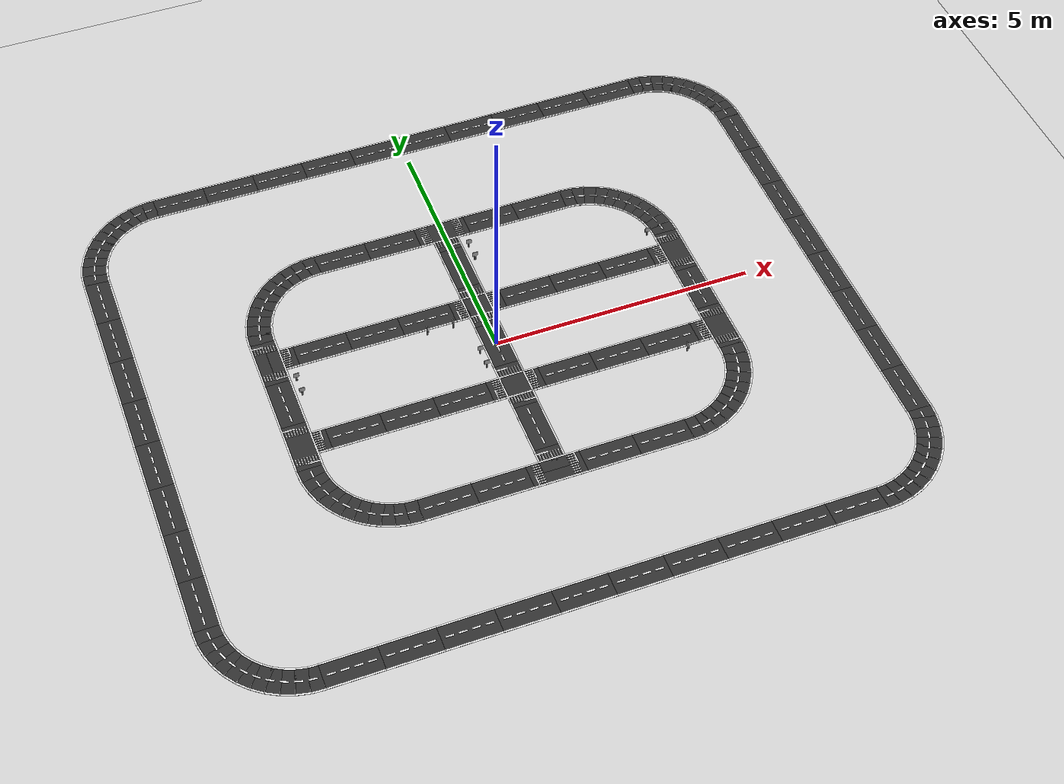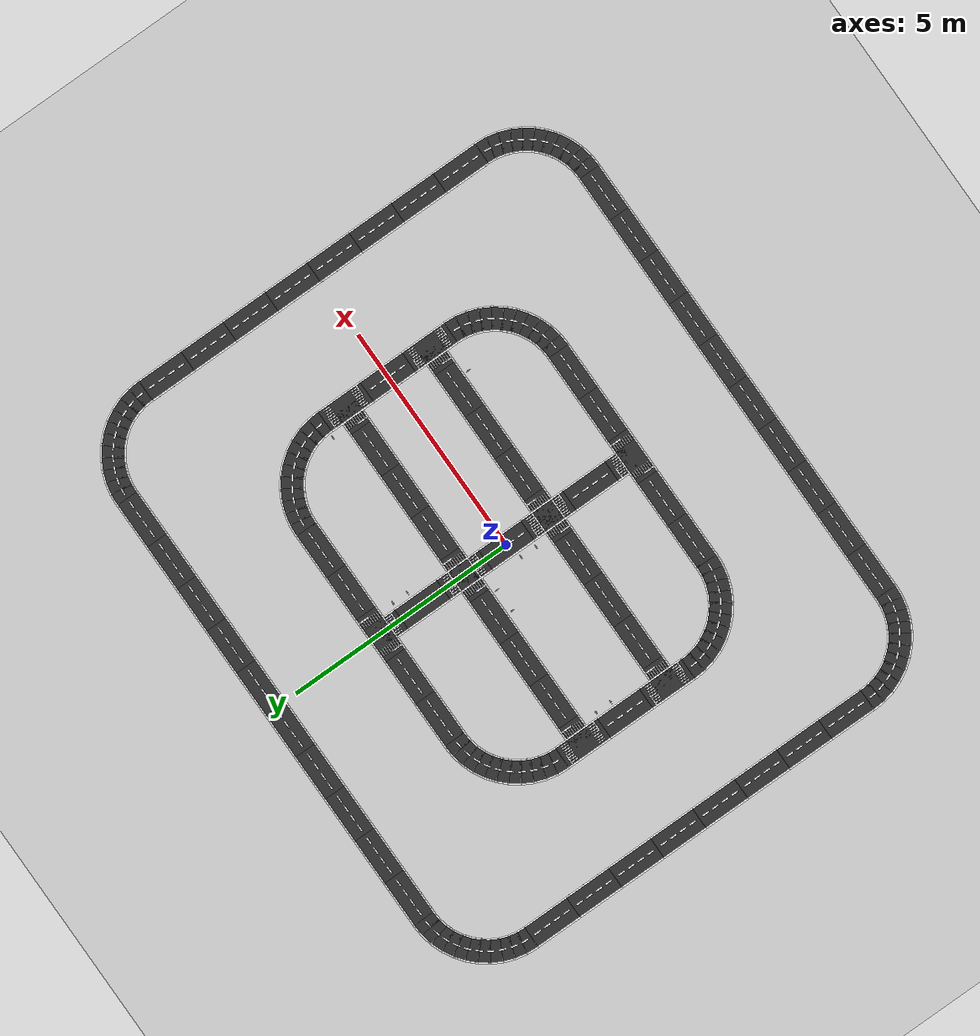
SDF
<?xml version="1.0"?>
<sdf version="1.6">
  <world name="track_world">

    <include><uri>model://ground_plane</uri></include>
    <include><uri>model://sun</uri></include>

    <physics type="ode">
      <real_time_update_rate>1000.0</real_time_update_rate>
      <max_step_size>0.001</max_step_size>
      <real_time_factor>1</real_time_factor>
      <ode>
        <solver>
          <type>quick</type><iters>150</iters><sor>1.3</sor>
          <use_dynamic_moi_rescaling>1</use_dynamic_moi_rescaling>
        </solver>
        <constraints>
          <cfm>0.00001</cfm><erp>0.2</erp>
          <contact_max_correcting_vel>2000.0</contact_max_correcting_vel>
          <contact_surface_layer>0.001</contact_surface_layer>
        </constraints>
      </ode>
    </physics>

    <gui fullscreen="0">
      <camera name="user_camera">
        <pose>1.0 0.0 22.0 0 1.55 0</pose>
        <view_controller>orbit</view_controller>
        <projection_type>perspective</projection_type>
      </camera>
    </gui>

    <include>
      <name>arc_tr</name>
      <uri>model://track_arc_90</uri>
      <pose>2.50000 1.50000 0.00000 0 0 0.00000</pose>
    </include>
    <include>
      <name>arc_tl</name>
      <uri>model://track_arc_90</uri>
      <pose>-2.50000 1.50000 0.00000 0 0 1.57080</pose>
    </include>
    <include>
      <name>arc_bl</name>
      <uri>model://track_arc_90</uri>
      <pose>-2.50000 -1.50000 0.00000 0 0 3.14159</pose>
    </include>
    <include>
      <name>arc_br</name>
      <uri>model://track_arc_90</uri>
      <pose>2.50000 -1.50000 0.00000 0 0 4.71239</pose>
    </include>
    <include>
      <name>top_t</name>
      <uri>model://track_t_intersection</uri>
      <pose>0.00000 3.00000 0.00000 0 0 4.71239</pose>
    </include>
    <include>
      <name>top_1</name>
      <uri>model://track_straight_1m</uri>
      <pose>-2.00000 3.00000 0.00000 0 0 0.00000</pose>
    </include>
    <include>
      <name>top_2</name>
      <uri>model://track_straight_1m</uri>
      <pose>-1.00000 3.00000 0.00000 0 0 0.00000</pose>
    </include>
    <include>
      <name>top_3</name>
      <uri>model://track_straight_1m</uri>
      <pose>1.00000 3.00000 0.00000 0 0 0.00000</pose>
    </include>
    <include>
      <name>top_4</name>
      <uri>model://track_straight_1m</uri>
      <pose>2.00000 3.00000 0.00000 0 0 0.00000</pose>
    </include>
    <include>
      <name>bot_t</name>
      <uri>model://track_t_intersection</uri>
      <pose>0.00000 -3.00000 0.00000 0 0 1.57080</pose>
    </include>
    <include>
      <name>bot_1</name>
      <uri>model://track_straight_1m</uri>
      <pose>-2.00000 -3.00000 0.00000 0 0 0.00000</pose>
    </include>
    <include>
      <name>bot_2</name>
      <uri>model://track_straight_1m</uri>
      <pose>-1.00000 -3.00000 0.00000 0 0 0.00000</pose>
    </include>
    <include>
      <name>bot_3</name>
      <uri>model://track_straight_1m</uri>
      <pose>1.00000 -3.00000 0.00000 0 0 0.00000</pose>
    </include>
    <include>
      <name>bot_4</name>
      <uri>model://track_straight_1m</uri>
      <pose>2.00000 -3.00000 0.00000 0 0 0.00000</pose>
    </include>
    <include>
      <name>left_t_n</name>
      <uri>model://track_t_intersection</uri>
      <pose>-4.00000 1.00000 0.00000 0 0 0.00000</pose>
    </include>
    <include>
      <name>left_mid</name>
      <uri>model://track_straight_1m</uri>
      <pose>-4.00000 0.00000 0.00000 0 0 1.57080</pose>
    </include>
    <include>
      <name>left_t_s</name>
      <uri>model://track_t_intersection</uri>
      <pose>-4.00000 -1.00000 0.00000 0 0 0.00000</pose>
    </include>
    <include>
      <name>right_t_n</name>
      <uri>model://track_t_intersection</uri>
      <pose>4.00000 1.00000 0.00000 0 0 3.14159</pose>
    </include>
    <include>
      <name>right_mid</name>
      <uri>model://track_straight_1m</uri>
      <pose>4.00000 0.00000 0.00000 0 0 1.57080</pose>
    </include>
    <include>
      <name>right_t_s</name>
      <uri>model://track_t_intersection</uri>
      <pose>4.00000 -1.00000 0.00000 0 0 3.14159</pose>
    </include>
    <include>
      <name>cross_n</name>
      <uri>model://track_cross_intersection</uri>
      <pose>0.00000 1.00000 0.00000 0 0 0.00000</pose>
    </include>
    <include>
      <name>cross_s</name>
      <uri>model://track_cross_intersection</uri>
      <pose>0.00000 -1.00000 0.00000 0 0 0.00000</pose>
    </include>
    <include>
      <name>uh_w1</name>
      <uri>model://track_straight_1m</uri>
      <pose>-3.00000 1.00000 0.00000 0 0 0.00000</pose>
    </include>
    <include>
      <name>uh_w2</name>
      <uri>model://track_straight_1m</uri>
      <pose>-2.00000 1.00000 0.00000 0 0 0.00000</pose>
    </include>
    <include>
      <name>uh_w3</name>
      <uri>model://track_straight_1m</uri>
      <pose>-1.00000 1.00000 0.00000 0 0 0.00000</pose>
    </include>
    <include>
      <name>uh_e1</name>
      <uri>model://track_straight_1m</uri>
      <pose>1.00000 1.00000 0.00000 0 0 0.00000</pose>
    </include>
    <include>
      <name>uh_e2</name>
      <uri>model://track_straight_1m</uri>
      <pose>2.00000 1.00000 0.00000 0 0 0.00000</pose>
    </include>
    <include>
      <name>uh_e3</name>
      <uri>model://track_straight_1m</uri>
      <pose>3.00000 1.00000 0.00000 0 0 0.00000</pose>
    </include>
    <include>
      <name>lh_w1</name>
      <uri>model://track_straight_1m</uri>
      <pose>-3.00000 -1.00000 0.00000 0 0 0.00000</pose>
    </include>
    <include>
      <name>lh_w2</name>
      <uri>model://track_straight_1m</uri>
      <pose>-2.00000 -1.00000 0.00000 0 0 0.00000</pose>
    </include>
    <include>
      <name>lh_w3</name>
      <uri>model://track_straight_1m</uri>
      <pose>-1.00000 -1.00000 0.00000 0 0 0.00000</pose>
    </include>
    <include>
      <name>lh_e1</name>
      <uri>model://track_straight_1m</uri>
      <pose>1.00000 -1.00000 0.00000 0 0 0.00000</pose>
    </include>
    <include>
      <name>lh_e2</name>
      <uri>model://track_straight_1m</uri>
      <pose>2.00000 -1.00000 0.00000 0 0 0.00000</pose>
    </include>
    <include>
      <name>lh_e3</name>
      <uri>model://track_straight_1m</uri>
      <pose>3.00000 -1.00000 0.00000 0 0 0.00000</pose>
    </include>
    <include>
      <name>iv_n</name>
      <uri>model://track_straight_1m</uri>
      <pose>0.00000 2.00000 0.00000 0 0 1.57080</pose>
    </include>
    <include>
      <name>iv_m</name>
      <uri>model://track_straight_1m</uri>
      <pose>0.00000 0.00000 0.00000 0 0 1.57080</pose>
    </include>
    <include>
      <name>iv_s</name>
      <uri>model://track_straight_1m</uri>
      <pose>0.00000 -2.00000 0.00000 0 0 1.57080</pose>
    </include>

    <include>
      <name>sr_arc_tr</name>
      <uri>model://track_arc_90</uri>
      <pose>5.00000 4.00000 0.00000 0 0 0.00000</pose>
    </include>
    <include>
      <name>sr_arc_tl</name>
      <uri>model://track_arc_90</uri>
      <pose>-5.00000 4.00000 0.00000 0 0 1.57080</pose>
    </include>
    <include>
      <name>sr_arc_bl</name>
      <uri>model://track_arc_90</uri>
      <pose>-5.00000 -4.00000 0.00000 0 0 3.14159</pose>
    </include>
    <include>
      <name>sr_arc_br</name>
      <uri>model://track_arc_90</uri>
      <pose>5.00000 -4.00000 0.00000 0 0 4.71239</pose>
    </include>
    <include>
      <name>sr_top_1</name>
      <uri>model://track_straight_1m</uri>
      <pose>-4.50000 5.50000 0.00000 0 0 0.00000</pose>
    </include>
    <include>
      <name>sr_top_2</name>
      <uri>model://track_straight_1m</uri>
      <pose>-3.50000 5.50000 0.00000 0 0 0.00000</pose>
    </include>
    <include>
      <name>sr_top_3</name>
      <uri>model://track_straight_1m</uri>
      <pose>-2.50000 5.50000 0.00000 0 0 0.00000</pose>
    </include>
    <include>
      <name>sr_top_4</name>
      <uri>model://track_straight_1m</uri>
      <pose>-1.50000 5.50000 0.00000 0 0 0.00000</pose>
    </include>
    <include>
      <name>sr_top_5</name>
      <uri>model://track_straight_1m</uri>
      <pose>-0.50000 5.50000 0.00000 0 0 0.00000</pose>
    </include>
    <include>
      <name>sr_top_6</name>
      <uri>model://track_straight_1m</uri>
      <pose>0.50000 5.50000 0.00000 0 0 0.00000</pose>
    </include>
    <include>
      <name>sr_top_7</name>
      <uri>model://track_straight_1m</uri>
      <pose>1.50000 5.50000 0.00000 0 0 0.00000</pose>
    </include>
    <include>
      <name>sr_top_8</name>
      <uri>model://track_straight_1m</uri>
      <pose>2.50000 5.50000 0.00000 0 0 0.00000</pose>
    </include>
    <include>
      <name>sr_top_9</name>
      <uri>model://track_straight_1m</uri>
      <pose>3.50000 5.50000 0.00000 0 0 0.00000</pose>
    </include>
    <include>
      <name>sr_top_10</name>
      <uri>model://track_straight_1m</uri>
      <pose>4.50000 5.50000 0.00000 0 0 0.00000</pose>
    </include>
    <include>
      <name>sr_bot_1</name>
      <uri>model://track_straight_1m</uri>
      <pose>-4.50000 -5.50000 0.00000 0 0 0.00000</pose>
    </include>
    <include>
      <name>sr_bot_2</name>
      <uri>model://track_straight_1m</uri>
      <pose>-3.50000 -5.50000 0.00000 0 0 0.00000</pose>
    </include>
    <include>
      <name>sr_bot_3</name>
      <uri>model://track_straight_1m</uri>
      <pose>-2.50000 -5.50000 0.00000 0 0 0.00000</pose>
    </include>
    <include>
      <name>sr_bot_4</name>
      <uri>model://track_straight_1m</uri>
      <pose>-1.50000 -5.50000 0.00000 0 0 0.00000</pose>
    </include>
    <include>
      <name>sr_bot_5</name>
      <uri>model://track_straight_1m</uri>
      <pose>-0.50000 -5.50000 0.00000 0 0 0.00000</pose>
    </include>
    <include>
      <name>sr_bot_6</name>
      <uri>model://track_straight_1m</uri>
      <pose>0.50000 -5.50000 0.00000 0 0 0.00000</pose>
    </include>
    <include>
      <name>sr_bot_7</name>
      <uri>model://track_straight_1m</uri>
      <pose>1.50000 -5.50000 0.00000 0 0 0.00000</pose>
    </include>
    <include>
      <name>sr_bot_8</name>
      <uri>model://track_straight_1m</uri>
      <pose>2.50000 -5.50000 0.00000 0 0 0.00000</pose>
    </include>
    <include>
      <name>sr_bot_9</name>
      <uri>model://track_straight_1m</uri>
      <pose>3.50000 -5.50000 0.00000 0 0 0.00000</pose>
    </include>
    <include>
      <name>sr_bot_10</name>
      <uri>model://track_straight_1m</uri>
      <pose>4.50000 -5.50000 0.00000 0 0 0.00000</pose>
    </include>
    <include>
      <name>sr_left_1</name>
      <uri>model://track_straight_1m</uri>
      <pose>-6.50000 -3.50000 0.00000 0 0 1.57080</pose>
    </include>
    <include>
      <name>sr_left_2</name>
      <uri>model://track_straight_1m</uri>
      <pose>-6.50000 -2.50000 0.00000 0 0 1.57080</pose>
    </include>
    <include>
      <name>sr_left_3</name>
      <uri>model://track_straight_1m</uri>
      <pose>-6.50000 -1.50000 0.00000 0 0 1.57080</pose>
    </include>
    <include>
      <name>sr_left_4</name>
      <uri>model://track_straight_1m</uri>
      <pose>-6.50000 -0.50000 0.00000 0 0 1.57080</pose>
    </include>
    <include>
      <name>sr_left_5</name>
      <uri>model://track_straight_1m</uri>
      <pose>-6.50000 0.50000 0.00000 0 0 1.57080</pose>
    </include>
    <include>
      <name>sr_left_6</name>
      <uri>model://track_straight_1m</uri>
      <pose>-6.50000 1.50000 0.00000 0 0 1.57080</pose>
    </include>
    <include>
      <name>sr_left_7</name>
      <uri>model://track_straight_1m</uri>
      <pose>-6.50000 2.50000 0.00000 0 0 1.57080</pose>
    </include>
    <include>
      <name>sr_left_8</name>
      <uri>model://track_straight_1m</uri>
      <pose>-6.50000 3.50000 0.00000 0 0 1.57080</pose>
    </include>
    <include>
      <name>sr_right_1</name>
      <uri>model://track_straight_1m</uri>
      <pose>6.50000 -3.50000 0.00000 0 0 1.57080</pose>
    </include>
    <include>
      <name>sr_right_2</name>
      <uri>model://track_straight_1m</uri>
      <pose>6.50000 -2.50000 0.00000 0 0 1.57080</pose>
    </include>
    <include>
      <name>sr_right_3</name>
      <uri>model://track_straight_1m</uri>
      <pose>6.50000 -1.50000 0.00000 0 0 1.57080</pose>
    </include>
    <include>
      <name>sr_right_4</name>
      <uri>model://track_straight_1m</uri>
      <pose>6.50000 -0.50000 0.00000 0 0 1.57080</pose>
    </include>
    <include>
      <name>sr_right_5</name>
      <uri>model://track_straight_1m</uri>
      <pose>6.50000 0.50000 0.00000 0 0 1.57080</pose>
    </include>
    <include>
      <name>sr_right_6</name>
      <uri>model://track_straight_1m</uri>
      <pose>6.50000 1.50000 0.00000 0 0 1.57080</pose>
    </include>
    <include>
      <name>sr_right_7</name>
      <uri>model://track_straight_1m</uri>
      <pose>6.50000 2.50000 0.00000 0 0 1.57080</pose>
    </include>
    <include>
      <name>sr_right_8</name>
      <uri>model://track_straight_1m</uri>
      <pose>6.50000 3.50000 0.00000 0 0 1.57080</pose>
    </include>

    <include>
      <name>sign_right_1</name>
      <uri>model://sign_right</uri>
      <pose>-3.65000 0.10000 0.00000 0 0 3.14159</pose>
    </include>
    <include>
      <name>sign_stop_1</name>
      <uri>model://sign_stop</uri>
      <pose>-3.65000 0.45000 0.00000 0 0 3.14159</pose>
    </include>
    <include>
      <name>sign_left_1</name>
      <uri>model://sign_left</uri>
      <pose>-1.10000 0.65000 0.00000 0 0 1.57080</pose>
    </include>
    <include>
      <name>sign_stop_2</name>
      <uri>model://sign_stop</uri>
      <pose>-0.60000 0.65000 0.00000 0 0 1.57080</pose>
    </include>
    <include>
      <name>sign_left_2</name>
      <uri>model://sign_left</uri>
      <pose>0.35000 2.10000 0.00000 0 0 3.14159</pose>
    </include>
    <include>
      <name>sign_stop_3</name>
      <uri>model://sign_stop</uri>
      <pose>0.35000 2.45000 0.00000 0 0 3.14159</pose>
    </include>
    <include>
      <name>sign_forward_1</name>
      <uri>model://sign_forward</uri>
      <pose>-0.35000 -0.10000 0.00000 0 0 0.00000</pose>
    </include>
    <include>
      <name>sign_stop_4</name>
      <uri>model://sign_stop</uri>
      <pose>-0.35000 -0.45000 0.00000 0 0 0.00000</pose>
    </include>
    <include>
      <name>sign_no_entry_1</name>
      <uri>model://sign_no_entry</uri>
      <pose>3.65000 1.55000 0.00000 0 0 0.00000</pose>
    </include>
    <include>
      <name>sign_dead_end_1</name>
      <uri>model://sign_dead_end</uri>
      <pose>3.20000 -1.35000 0.00000 0 0 1.57080</pose>
    </include>
  </world>
</sdf>

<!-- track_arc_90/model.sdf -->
<sdf version="1.6">
  <model name="track_arc_90">
    <static>true</static>
    <link name="link">
      <visual name="v001">
        <pose>1.49618 0.10701 0.00100 0 0 1.64220</pose>
        <geometry>
          <box>
            <size>0.23134 0.50000 0.00200</size>
          </box>
        </geometry>
        <material>
          <ambient>0.180 0.180 0.180 1</ambient>
          <diffuse>0.180 0.180 0.180 1</diffuse>
          <specular>0.05 0.05 0.05 1</specular>
        </material>
      </visual>
      <visual name="v002">
        <pose>1.46572 0.31885 0.00100 0 0 1.78500</pose>
        <geometry>
          <box>
            <size>0.23134 0.50000 0.00200</size>
          </box>
        </geometry>
        <material>
          <ambient>0.180 0.180 0.180 1</ambient>
          <diffuse>0.180 0.180 0.180 1</diffuse>
          <specular>0.05 0.05 0.05 1</specular>
        </material>
      </visual>
      <visual name="v003">
        <pose>1.40542 0.52420 0.00100 0 0 1.92780</pose>
        <geometry>
          <box>
            <size>0.23134 0.50000 0.00200</size>
          </box>
        </geometry>
        <material>
          <ambient>0.180 0.180 0.180 1</ambient>
          <diffuse>0.180 0.180 0.180 1</diffuse>
          <specular>0.05 0.05 0.05 1</specular>
        </material>
      </visual>
      <visual name="v004">
        <pose>1.31652 0.71887 0.00100 0 0 2.07060</pose>
        <geometry>
          <box>
            <size>0.23134 0.50000 0.00200</size>
          </box>
        </geometry>
        <material>
          <ambient>0.180 0.180 0.180 1</ambient>
          <diffuse>0.180 0.180 0.180 1</diffuse>
          <specular>0.05 0.05 0.05 1</specular>
        </material>
      </visual>
      <visual name="v005">
        <pose>1.20081 0.89892 0.00100 0 0 2.21339</pose>
        <geometry>
          <box>
            <size>0.23134 0.50000 0.00200</size>
          </box>
        </geometry>
        <material>
          <ambient>0.180 0.180 0.180 1</ambient>
          <diffuse>0.180 0.180 0.180 1</diffuse>
          <specular>0.05 0.05 0.05 1</specular>
        </material>
      </visual>
      <visual name="v006">
        <pose>1.06066 1.06066 0.00100 0 0 2.35619</pose>
        <geometry>
          <box>
            <size>0.23134 0.50000 0.00200</size>
          </box>
        </geometry>
        <material>
          <ambient>0.180 0.180 0.180 1</ambient>
          <diffuse>0.180 0.180 0.180 1</diffuse>
          <specular>0.05 0.05 0.05 1</specular>
        </material>
      </visual>
      <visual name="v007">
        <pose>0.89892 1.20081 0.00100 0 0 2.49899</pose>
        <geometry>
          <box>
            <size>0.23134 0.50000 0.00200</size>
          </box>
        </geometry>
        <material>
          <ambient>0.180 0.180 0.180 1</ambient>
          <diffuse>0.180 0.180 0.180 1</diffuse>
          <specular>0.05 0.05 0.05 1</specular>
        </material>
      </visual>
      <visual name="v008">
        <pose>0.71887 1.31652 0.00100 0 0 2.64179</pose>
        <geometry>
          <box>
            <size>0.23134 0.50000 0.00200</size>
          </box>
        </geometry>
        <material>
          <ambient>0.180 0.180 0.180 1</ambient>
          <diffuse>0.180 0.180 0.180 1</diffuse>
          <specular>0.05 0.05 0.05 1</specular>
        </material>
      </visual>
      <visual name="v009">
        <pose>0.52420 1.40542 0.00100 0 0 2.78459</pose>
        <geometry>
          <box>
            <size>0.23134 0.50000 0.00200</size>
          </box>
        </geometry>
        <material>
          <ambient>0.180 0.180 0.180 1</ambient>
          <diffuse>0.180 0.180 0.180 1</diffuse>
          <specular>0.05 0.05 0.05 1</specular>
        </material>
      </visual>
      <visual name="v010">
        <pose>0.31885 1.46572 0.00100 0 0 2.92739</pose>
        <geometry>
          <box>
            <size>0.23134 0.50000 0.00200</size>
          </box>
        </geometry>
        <material>
          <ambient>0.180 0.180 0.180 1</ambient>
          <diffuse>0.180 0.180 0.180 1</diffuse>
          <specular>0.05 0.05 0.05 1</specular>
        </material>
      </visual>
      <visual name="v011">
        <pose>0.10701 1.49618 0.00100 0 0 3.07019</pose>
        <geometry>
          <box>
            <size>0.23134 0.50000 0.00200</size>
          </box>
        </geometry>
        <material>
          <ambient>0.180 0.180 0.180 1</ambient>
          <diffuse>0.180 0.180 0.180 1</diffuse>
          <specular>0.05 0.05 0.05 1</specular>
        </material>
      </visual>
      <visual name="v012">
        <pose>1.73058 0.12377 0.00400 0 0 1.64220</pose>
        <geometry>
          <box>
            <size>0.26758 0.03000 0.00200</size>
          </box>
        </geometry>
        <material>
          <ambient>1.000 1.000 1.000 1</ambient>
          <diffuse>1.000 1.000 1.000 1</diffuse>
          <specular>0.05 0.05 0.05 1</specular>
        </material>
      </visual>
      <visual name="v013">
        <pose>1.69535 0.36880 0.00400 0 0 1.78500</pose>
        <geometry>
          <box>
            <size>0.26758 0.03000 0.00200</size>
          </box>
        </geometry>
        <material>
          <ambient>1.000 1.000 1.000 1</ambient>
          <diffuse>1.000 1.000 1.000 1</diffuse>
          <specular>0.05 0.05 0.05 1</specular>
        </material>
      </visual>
      <visual name="v014">
        <pose>1.62561 0.60632 0.00400 0 0 1.92780</pose>
        <geometry>
          <box>
            <size>0.26758 0.03000 0.00200</size>
          </box>
        </geometry>
        <material>
          <ambient>1.000 1.000 1.000 1</ambient>
          <diffuse>1.000 1.000 1.000 1</diffuse>
          <specular>0.05 0.05 0.05 1</specular>
        </material>
      </visual>
      <visual name="v015">
        <pose>1.52277 0.83150 0.00400 0 0 2.07060</pose>
        <geometry>
          <box>
            <size>0.26758 0.03000 0.00200</size>
          </box>
        </geometry>
        <material>
          <ambient>1.000 1.000 1.000 1</ambient>
          <diffuse>1.000 1.000 1.000 1</diffuse>
          <specular>0.05 0.05 0.05 1</specular>
        </material>
      </visual>
      <visual name="v016">
        <pose>1.38894 1.03975 0.00400 0 0 2.21339</pose>
        <geometry>
          <box>
            <size>0.26758 0.03000 0.00200</size>
          </box>
        </geometry>
        <material>
          <ambient>1.000 1.000 1.000 1</ambient>
          <diffuse>1.000 1.000 1.000 1</diffuse>
          <specular>0.05 0.05 0.05 1</specular>
        </material>
      </visual>
      <visual name="v017">
        <pose>1.22683 1.22683 0.00400 0 0 2.35619</pose>
        <geometry>
          <box>
            <size>0.26758 0.03000 0.00200</size>
          </box>
        </geometry>
        <material>
          <ambient>1.000 1.000 1.000 1</ambient>
          <diffuse>1.000 1.000 1.000 1</diffuse>
          <specular>0.05 0.05 0.05 1</specular>
        </material>
      </visual>
      <visual name="v018">
        <pose>1.03975 1.38894 0.00400 0 0 2.49899</pose>
        <geometry>
          <box>
            <size>0.26758 0.03000 0.00200</size>
          </box>
        </geometry>
        <material>
          <ambient>1.000 1.000 1.000 1</ambient>
          <diffuse>1.000 1.000 1.000 1</diffuse>
          <specular>0.05 0.05 0.05 1</specular>
        </material>
      </visual>
      <visual name="v019">
        <pose>0.83150 1.52277 0.00400 0 0 2.64179</pose>
        <geometry>
          <box>
            <size>0.26758 0.03000 0.00200</size>
          </box>
        </geometry>
        <material>
          <ambient>1.000 1.000 1.000 1</ambient>
          <diffuse>1.000 1.000 1.000 1</diffuse>
          <specular>0.05 0.05 0.05 1</specular>
        </material>
      </visual>
      <visual name="v020">
        <pose>0.60632 1.62561 0.00400 0 0 2.78459</pose>
        <geometry>
          <box>
            <size>0.26758 0.03000 0.00200</size>
          </box>
        </geometry>
        <material>
          <ambient>1.000 1.000 1.000 1</ambient>
          <diffuse>1.000 1.000 1.000 1</diffuse>
          <specular>0.05 0.05 0.05 1</specular>
        </material>
      </visual>
      <visual name="v021">
        <pose>0.36880 1.69535 0.00400 0 0 2.92739</pose>
        <geometry>
          <box>
            <size>0.26758 0.03000 0.00200</size>
          </box>
        </geometry>
        <material>
          <ambient>1.000 1.000 1.000 1</ambient>
          <diffuse>1.000 1.000 1.000 1</diffuse>
          <specular>0.05 0.05 0.05 1</specular>
        </material>
      </visual>
      <visual name="v022">
        <pose>0.12377 1.73058 0.00400 0 0 3.07019</pose>
        <geometry>
          <box>
            <size>0.26758 0.03000 0.00200</size>
          </box>
        </geometry>
        <material>
          <ambient>1.000 1.000 1.000 1</ambient>
          <diffuse>1.000 1.000 1.000 1</diffuse>
          <specular>0.05 0.05 0.05 1</specular>
        </material>
      </visual>
      <visual name="v023">
        <pose>1.26178 0.09024 0.00400 0 0 1.64220</pose>
        <geometry>
          <box>
            <size>0.19509 0.03000 0.00200</size>
          </box>
        </geometry>
        <material>
          <ambient>1.000 1.000 1.000 1</ambient>
          <diffuse>1.000 1.000 1.000 1</diffuse>
          <specular>0.05 0.05 0.05 1</specular>
        </material>
      </visual>
      <visual name="v024">
        <pose>1.23609 0.26890 0.00400 0 0 1.78500</pose>
        <geometry>
          <box>
            <size>0.19509 0.03000 0.00200</size>
          </box>
        </geometry>
        <material>
          <ambient>1.000 1.000 1.000 1</ambient>
          <diffuse>1.000 1.000 1.000 1</diffuse>
          <specular>0.05 0.05 0.05 1</specular>
        </material>
      </visual>
      <visual name="v025">
        <pose>1.18524 0.44207 0.00400 0 0 1.92780</pose>
        <geometry>
          <box>
            <size>0.19509 0.03000 0.00200</size>
          </box>
        </geometry>
        <material>
          <ambient>1.000 1.000 1.000 1</ambient>
          <diffuse>1.000 1.000 1.000 1</diffuse>
          <specular>0.05 0.05 0.05 1</specular>
        </material>
      </visual>
      <visual name="v026">
        <pose>1.11026 0.60625 0.00400 0 0 2.07060</pose>
        <geometry>
          <box>
            <size>0.19509 0.03000 0.00200</size>
          </box>
        </geometry>
        <material>
          <ambient>1.000 1.000 1.000 1</ambient>
          <diffuse>1.000 1.000 1.000 1</diffuse>
          <specular>0.05 0.05 0.05 1</specular>
        </material>
      </visual>
      <visual name="v027">
        <pose>1.01268 0.75809 0.00400 0 0 2.21339</pose>
        <geometry>
          <box>
            <size>0.19509 0.03000 0.00200</size>
          </box>
        </geometry>
        <material>
          <ambient>1.000 1.000 1.000 1</ambient>
          <diffuse>1.000 1.000 1.000 1</diffuse>
          <specular>0.05 0.05 0.05 1</specular>
        </material>
      </visual>
      <visual name="v028">
        <pose>0.89449 0.89449 0.00400 0 0 2.35619</pose>
        <geometry>
          <box>
            <size>0.19509 0.03000 0.00200</size>
          </box>
        </geometry>
        <material>
          <ambient>1.000 1.000 1.000 1</ambient>
          <diffuse>1.000 1.000 1.000 1</diffuse>
          <specular>0.05 0.05 0.05 1</specular>
        </material>
      </visual>
      <visual name="v029">
        <pose>0.75809 1.01268 0.00400 0 0 2.49899</pose>
        <geometry>
          <box>
            <size>0.19509 0.03000 0.00200</size>
          </box>
        </geometry>
        <material>
          <ambient>1.000 1.000 1.000 1</ambient>
          <diffuse>1.000 1.000 1.000 1</diffuse>
          <specular>0.05 0.05 0.05 1</specular>
        </material>
      </visual>
      <visual name="v030">
        <pose>0.60625 1.11026 0.00400 0 0 2.64179</pose>
        <geometry>
          <box>
            <size>0.19509 0.03000 0.00200</size>
          </box>
        </geometry>
        <material>
          <ambient>1.000 1.000 1.000 1</ambient>
          <diffuse>1.000 1.000 1.000 1</diffuse>
          <specular>0.05 0.05 0.05 1</specular>
        </material>
      </visual>
      <visual name="v031">
        <pose>0.44207 1.18524 0.00400 0 0 2.78459</pose>
        <geometry>
          <box>
            <size>0.19509 0.03000 0.00200</size>
          </box>
        </geometry>
        <material>
          <ambient>1.000 1.000 1.000 1</ambient>
          <diffuse>1.000 1.000 1.000 1</diffuse>
          <specular>0.05 0.05 0.05 1</specular>
        </material>
      </visual>
      <visual name="v032">
        <pose>0.26890 1.23609 0.00400 0 0 2.92739</pose>
        <geometry>
          <box>
            <size>0.19509 0.03000 0.00200</size>
          </box>
        </geometry>
        <material>
          <ambient>1.000 1.000 1.000 1</ambient>
          <diffuse>1.000 1.000 1.000 1</diffuse>
          <specular>0.05 0.05 0.05 1</specular>
        </material>
      </visual>
      <visual name="v033">
        <pose>0.09024 1.26178 0.00400 0 0 3.07019</pose>
        <geometry>
          <box>
            <size>0.19509 0.03000 0.00200</size>
          </box>
        </geometry>
        <material>
          <ambient>1.000 1.000 1.000 1</ambient>
          <diffuse>1.000 1.000 1.000 1</diffuse>
          <specular>0.05 0.05 0.05 1</specular>
        </material>
      </visual>
      <visual name="v034">
        <pose>1.49318 0.14288 0.00400 0 0 1.66619</pose>
        <geometry>
          <box>
            <size>0.15000 0.03000 0.00200</size>
          </box>
        </geometry>
        <material>
          <ambient>1.000 1.000 1.000 1</ambient>
          <diffuse>1.000 1.000 1.000 1</diffuse>
          <specular>0.05 0.05 0.05 1</specular>
        </material>
      </visual>
      <visual name="v035">
        <pose>1.45384 0.36926 0.00400 0 0 1.81953</pose>
        <geometry>
          <box>
            <size>0.15000 0.03000 0.00200</size>
          </box>
        </geometry>
        <material>
          <ambient>1.000 1.000 1.000 1</ambient>
          <diffuse>1.000 1.000 1.000 1</diffuse>
          <specular>0.05 0.05 0.05 1</specular>
        </material>
      </visual>
      <visual name="v036">
        <pose>1.38038 0.58698 0.00400 0 0 1.97286</pose>
        <geometry>
          <box>
            <size>0.15000 0.03000 0.00200</size>
          </box>
        </geometry>
        <material>
          <ambient>1.000 1.000 1.000 1</ambient>
          <diffuse>1.000 1.000 1.000 1</diffuse>
          <specular>0.05 0.05 0.05 1</specular>
        </material>
      </visual>
      <visual name="v037">
        <pose>1.27454 0.79092 0.00400 0 0 2.12619</pose>
        <geometry>
          <box>
            <size>0.15000 0.03000 0.00200</size>
          </box>
        </geometry>
        <material>
          <ambient>1.000 1.000 1.000 1</ambient>
          <diffuse>1.000 1.000 1.000 1</diffuse>
          <specular>0.05 0.05 0.05 1</specular>
        </material>
      </visual>
      <visual name="v038">
        <pose>1.13878 0.97631 0.00400 0 0 2.27953</pose>
        <geometry>
          <box>
            <size>0.15000 0.03000 0.00200</size>
          </box>
        </geometry>
        <material>
          <ambient>1.000 1.000 1.000 1</ambient>
          <diffuse>1.000 1.000 1.000 1</diffuse>
          <specular>0.05 0.05 0.05 1</specular>
        </material>
      </visual>
      <visual name="v039">
        <pose>0.97631 1.13878 0.00400 0 0 2.43286</pose>
        <geometry>
          <box>
            <size>0.15000 0.03000 0.00200</size>
          </box>
        </geometry>
        <material>
          <ambient>1.000 1.000 1.000 1</ambient>
          <diffuse>1.000 1.000 1.000 1</diffuse>
          <specular>0.05 0.05 0.05 1</specular>
        </material>
      </visual>
      <visual name="v040">
        <pose>0.79092 1.27454 0.00400 0 0 2.58619</pose>
        <geometry>
          <box>
            <size>0.15000 0.03000 0.00200</size>
          </box>
        </geometry>
        <material>
          <ambient>1.000 1.000 1.000 1</ambient>
          <diffuse>1.000 1.000 1.000 1</diffuse>
          <specular>0.05 0.05 0.05 1</specular>
        </material>
      </visual>
      <visual name="v041">
        <pose>0.58698 1.38038 0.00400 0 0 2.73953</pose>
        <geometry>
          <box>
            <size>0.15000 0.03000 0.00200</size>
          </box>
        </geometry>
        <material>
          <ambient>1.000 1.000 1.000 1</ambient>
          <diffuse>1.000 1.000 1.000 1</diffuse>
          <specular>0.05 0.05 0.05 1</specular>
        </material>
      </visual>
      <visual name="v042">
        <pose>0.36926 1.45384 0.00400 0 0 2.89286</pose>
        <geometry>
          <box>
            <size>0.15000 0.03000 0.00200</size>
          </box>
        </geometry>
        <material>
          <ambient>1.000 1.000 1.000 1</ambient>
          <diffuse>1.000 1.000 1.000 1</diffuse>
          <specular>0.05 0.05 0.05 1</specular>
        </material>
      </visual>
      <visual name="v043">
        <pose>0.14288 1.49318 0.00400 0 0 3.04619</pose>
        <geometry>
          <box>
            <size>0.15000 0.03000 0.00200</size>
          </box>
        </geometry>
        <material>
          <ambient>1.000 1.000 1.000 1</ambient>
          <diffuse>1.000 1.000 1.000 1</diffuse>
          <specular>0.05 0.05 0.05 1</specular>
        </material>
      </visual>
    </link>
  </model>
</sdf>

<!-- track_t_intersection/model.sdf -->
<sdf version="1.6">
  <model name="track_t_intersection">
    <static>true</static>
    <link name="link">
      <visual name="v001">
        <pose>0.00000 0.00000 0.00100 0 0 1.57080</pose>
        <geometry>
          <box>
            <size>1.00000 0.50000 0.00200</size>
          </box>
        </geometry>
        <material>
          <ambient>0.180 0.180 0.180 1</ambient>
          <diffuse>0.180 0.180 0.180 1</diffuse>
          <specular>0.05 0.05 0.05 1</specular>
        </material>
      </visual>
      <visual name="v002">
        <pose>-0.23500 0.00000 0.00400 0 0 1.57080</pose>
        <geometry>
          <box>
            <size>1.00000 0.03000 0.00200</size>
          </box>
        </geometry>
        <material>
          <ambient>1.000 1.000 1.000 1</ambient>
          <diffuse>1.000 1.000 1.000 1</diffuse>
          <specular>0.05 0.05 0.05 1</specular>
        </material>
      </visual>
      <visual name="v003">
        <pose>0.23500 -0.00000 0.00400 0 0 1.57080</pose>
        <geometry>
          <box>
            <size>1.00000 0.03000 0.00200</size>
          </box>
        </geometry>
        <material>
          <ambient>1.000 1.000 1.000 1</ambient>
          <diffuse>1.000 1.000 1.000 1</diffuse>
          <specular>0.05 0.05 0.05 1</specular>
        </material>
      </visual>
      <visual name="v004">
        <pose>-0.17900 0.32500 0.00400 0 0 1.57080</pose>
        <geometry>
          <box>
            <size>0.15000 0.02000 0.00200</size>
          </box>
        </geometry>
        <material>
          <ambient>1.000 1.000 1.000 1</ambient>
          <diffuse>1.000 1.000 1.000 1</diffuse>
          <specular>0.05 0.05 0.05 1</specular>
        </material>
      </visual>
      <visual name="v005">
        <pose>-0.12800 0.32500 0.00400 0 0 1.57080</pose>
        <geometry>
          <box>
            <size>0.15000 0.02000 0.00200</size>
          </box>
        </geometry>
        <material>
          <ambient>1.000 1.000 1.000 1</ambient>
          <diffuse>1.000 1.000 1.000 1</diffuse>
          <specular>0.05 0.05 0.05 1</specular>
        </material>
      </visual>
      <visual name="v006">
        <pose>-0.07700 0.32500 0.00400 0 0 1.57080</pose>
        <geometry>
          <box>
            <size>0.15000 0.02000 0.00200</size>
          </box>
        </geometry>
        <material>
          <ambient>1.000 1.000 1.000 1</ambient>
          <diffuse>1.000 1.000 1.000 1</diffuse>
          <specular>0.05 0.05 0.05 1</specular>
        </material>
      </visual>
      <visual name="v007">
        <pose>-0.02600 0.32500 0.00400 0 0 1.57080</pose>
        <geometry>
          <box>
            <size>0.15000 0.02000 0.00200</size>
          </box>
        </geometry>
        <material>
          <ambient>1.000 1.000 1.000 1</ambient>
          <diffuse>1.000 1.000 1.000 1</diffuse>
          <specular>0.05 0.05 0.05 1</specular>
        </material>
      </visual>
      <visual name="v008">
        <pose>0.25000 0.00000 0.00100 0 0 0.00000</pose>
        <geometry>
          <box>
            <size>0.50000 0.50000 0.00200</size>
          </box>
        </geometry>
        <material>
          <ambient>0.180 0.180 0.180 1</ambient>
          <diffuse>0.180 0.180 0.180 1</diffuse>
          <specular>0.05 0.05 0.05 1</specular>
        </material>
      </visual>
      <visual name="v009">
        <pose>0.37500 0.23500 0.00400 0 0 0.00000</pose>
        <geometry>
          <box>
            <size>0.25000 0.03000 0.00200</size>
          </box>
        </geometry>
        <material>
          <ambient>1.000 1.000 1.000 1</ambient>
          <diffuse>1.000 1.000 1.000 1</diffuse>
          <specular>0.05 0.05 0.05 1</specular>
        </material>
      </visual>
      <visual name="v010">
        <pose>0.37500 -0.23500 0.00400 0 0 0.00000</pose>
        <geometry>
          <box>
            <size>0.25000 0.03000 0.00200</size>
          </box>
        </geometry>
        <material>
          <ambient>1.000 1.000 1.000 1</ambient>
          <diffuse>1.000 1.000 1.000 1</diffuse>
          <specular>0.05 0.05 0.05 1</specular>
        </material>
      </visual>
      <visual name="v011">
        <pose>0.32500 -0.17900 0.00400 0 0 0.00000</pose>
        <geometry>
          <box>
            <size>0.15000 0.02000 0.00200</size>
          </box>
        </geometry>
        <material>
          <ambient>1.000 1.000 1.000 1</ambient>
          <diffuse>1.000 1.000 1.000 1</diffuse>
          <specular>0.05 0.05 0.05 1</specular>
        </material>
      </visual>
      <visual name="v012">
        <pose>0.32500 -0.12800 0.00400 0 0 0.00000</pose>
        <geometry>
          <box>
            <size>0.15000 0.02000 0.00200</size>
          </box>
        </geometry>
        <material>
          <ambient>1.000 1.000 1.000 1</ambient>
          <diffuse>1.000 1.000 1.000 1</diffuse>
          <specular>0.05 0.05 0.05 1</specular>
        </material>
      </visual>
      <visual name="v013">
        <pose>0.32500 -0.07700 0.00400 0 0 0.00000</pose>
        <geometry>
          <box>
            <size>0.15000 0.02000 0.00200</size>
          </box>
        </geometry>
        <material>
          <ambient>1.000 1.000 1.000 1</ambient>
          <diffuse>1.000 1.000 1.000 1</diffuse>
          <specular>0.05 0.05 0.05 1</specular>
        </material>
      </visual>
      <visual name="v014">
        <pose>0.32500 -0.02600 0.00400 0 0 0.00000</pose>
        <geometry>
          <box>
            <size>0.15000 0.02000 0.00200</size>
          </box>
        </geometry>
        <material>
          <ambient>1.000 1.000 1.000 1</ambient>
          <diffuse>1.000 1.000 1.000 1</diffuse>
          <specular>0.05 0.05 0.05 1</specular>
        </material>
      </visual>
      <visual name="v015">
        <pose>0.02600 0.32500 0.00400 0 0 1.57080</pose>
        <geometry>
          <box>
            <size>0.15000 0.02000 0.00200</size>
          </box>
        </geometry>
        <material>
          <ambient>1.000 1.000 1.000 1</ambient>
          <diffuse>1.000 1.000 1.000 1</diffuse>
          <specular>0.05 0.05 0.05 1</specular>
        </material>
      </visual>
      <visual name="v016">
        <pose>0.07700 0.32500 0.00400 0 0 1.57080</pose>
        <geometry>
          <box>
            <size>0.15000 0.02000 0.00200</size>
          </box>
        </geometry>
        <material>
          <ambient>1.000 1.000 1.000 1</ambient>
          <diffuse>1.000 1.000 1.000 1</diffuse>
          <specular>0.05 0.05 0.05 1</specular>
        </material>
      </visual>
      <visual name="v017">
        <pose>0.12800 0.32500 0.00400 0 0 1.57080</pose>
        <geometry>
          <box>
            <size>0.15000 0.02000 0.00200</size>
          </box>
        </geometry>
        <material>
          <ambient>1.000 1.000 1.000 1</ambient>
          <diffuse>1.000 1.000 1.000 1</diffuse>
          <specular>0.05 0.05 0.05 1</specular>
        </material>
      </visual>
      <visual name="v018">
        <pose>0.17900 0.32500 0.00400 0 0 1.57080</pose>
        <geometry>
          <box>
            <size>0.15000 0.02000 0.00200</size>
          </box>
        </geometry>
        <material>
          <ambient>1.000 1.000 1.000 1</ambient>
          <diffuse>1.000 1.000 1.000 1</diffuse>
          <specular>0.05 0.05 0.05 1</specular>
        </material>
      </visual>
      <visual name="v019">
        <pose>-0.11000 0.40250 0.00400 0 0 0.00000</pose>
        <geometry>
          <box>
            <size>0.22000 0.03000 0.00200</size>
          </box>
        </geometry>
        <material>
          <ambient>1.000 1.000 1.000 1</ambient>
          <diffuse>1.000 1.000 1.000 1</diffuse>
          <specular>0.05 0.05 0.05 1</specular>
        </material>
      </visual>
      <visual name="v020">
        <pose>0.32500 0.02600 0.00400 0 0 0.00000</pose>
        <geometry>
          <box>
            <size>0.15000 0.02000 0.00200</size>
          </box>
        </geometry>
        <material>
          <ambient>1.000 1.000 1.000 1</ambient>
          <diffuse>1.000 1.000 1.000 1</diffuse>
          <specular>0.05 0.05 0.05 1</specular>
        </material>
      </visual>
      <visual name="v021">
        <pose>0.32500 0.07700 0.00400 0 0 0.00000</pose>
        <geometry>
          <box>
            <size>0.15000 0.02000 0.00200</size>
          </box>
        </geometry>
        <material>
          <ambient>1.000 1.000 1.000 1</ambient>
          <diffuse>1.000 1.000 1.000 1</diffuse>
          <specular>0.05 0.05 0.05 1</specular>
        </material>
      </visual>
      <visual name="v022">
        <pose>0.32500 0.12800 0.00400 0 0 0.00000</pose>
        <geometry>
          <box>
            <size>0.15000 0.02000 0.00200</size>
          </box>
        </geometry>
        <material>
          <ambient>1.000 1.000 1.000 1</ambient>
          <diffuse>1.000 1.000 1.000 1</diffuse>
          <specular>0.05 0.05 0.05 1</specular>
        </material>
      </visual>
      <visual name="v023">
        <pose>0.32500 0.17900 0.00400 0 0 0.00000</pose>
        <geometry>
          <box>
            <size>0.15000 0.02000 0.00200</size>
          </box>
        </geometry>
        <material>
          <ambient>1.000 1.000 1.000 1</ambient>
          <diffuse>1.000 1.000 1.000 1</diffuse>
          <specular>0.05 0.05 0.05 1</specular>
        </material>
      </visual>
      <visual name="v024">
        <pose>0.40250 0.11000 0.00400 0 0 1.57080</pose>
        <geometry>
          <box>
            <size>0.22000 0.03000 0.00200</size>
          </box>
        </geometry>
        <material>
          <ambient>1.000 1.000 1.000 1</ambient>
          <diffuse>1.000 1.000 1.000 1</diffuse>
          <specular>0.05 0.05 0.05 1</specular>
        </material>
      </visual>

      <!-- South arm — stripes run E-W (perpendicular to N-S travel) -->
      <visual name="v025"><pose>-0.17900 -0.32500 0.00400 0 0 1.57080</pose><geometry><box><size>0.15000 0.02000 0.00200</size></box></geometry><material><ambient>1.000 1.000 1.000 1</ambient><diffuse>1.000 1.000 1.000 1</diffuse><specular>0.05 0.05 0.05 1</specular></material></visual>
      <visual name="v026"><pose>-0.12800 -0.32500 0.00400 0 0 1.57080</pose><geometry><box><size>0.15000 0.02000 0.00200</size></box></geometry><material><ambient>1.000 1.000 1.000 1</ambient><diffuse>1.000 1.000 1.000 1</diffuse><specular>0.05 0.05 0.05 1</specular></material></visual>
      <visual name="v027"><pose>-0.07700 -0.32500 0.00400 0 0 1.57080</pose><geometry><box><size>0.15000 0.02000 0.00200</size></box></geometry><material><ambient>1.000 1.000 1.000 1</ambient><diffuse>1.000 1.000 1.000 1</diffuse><specular>0.05 0.05 0.05 1</specular></material></visual>
      <visual name="v028"><pose>-0.02600 -0.32500 0.00400 0 0 1.57080</pose><geometry><box><size>0.15000 0.02000 0.00200</size></box></geometry><material><ambient>1.000 1.000 1.000 1</ambient><diffuse>1.000 1.000 1.000 1</diffuse><specular>0.05 0.05 0.05 1</specular></material></visual>
      <visual name="v029"><pose> 0.02600 -0.32500 0.00400 0 0 1.57080</pose><geometry><box><size>0.15000 0.02000 0.00200</size></box></geometry><material><ambient>1.000 1.000 1.000 1</ambient><diffuse>1.000 1.000 1.000 1</diffuse><specular>0.05 0.05 0.05 1</specular></material></visual>
      <visual name="v030"><pose> 0.07700 -0.32500 0.00400 0 0 1.57080</pose><geometry><box><size>0.15000 0.02000 0.00200</size></box></geometry><material><ambient>1.000 1.000 1.000 1</ambient><diffuse>1.000 1.000 1.000 1</diffuse><specular>0.05 0.05 0.05 1</specular></material></visual>
      <visual name="v031"><pose> 0.12800 -0.32500 0.00400 0 0 1.57080</pose><geometry><box><size>0.15000 0.02000 0.00200</size></box></geometry><material><ambient>1.000 1.000 1.000 1</ambient><diffuse>1.000 1.000 1.000 1</diffuse><specular>0.05 0.05 0.05 1</specular></material></visual>
      <visual name="v032"><pose> 0.17900 -0.32500 0.00400 0 0 1.57080</pose><geometry><box><size>0.15000 0.02000 0.00200</size></box></geometry><material><ambient>1.000 1.000 1.000 1</ambient><diffuse>1.000 1.000 1.000 1</diffuse><specular>0.05 0.05 0.05 1</specular></material></visual>
      <visual name="v033"><pose>0.11000 -0.40250 0.00400 0 0 0.00000</pose><geometry><box><size>0.22000 0.03000 0.00200</size></box></geometry><material><ambient>1.000 1.000 1.000 1</ambient><diffuse>1.000 1.000 1.000 1</diffuse><specular>0.05 0.05 0.05 1</specular></material></visual>

    </link>
  </model>
</sdf>

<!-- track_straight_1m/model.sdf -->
<sdf version="1.6">
  <model name="track_straight_1m">
    <static>true</static>
    <link name="link">
      <visual name="v001">
        <pose>0.00000 0.00000 0.00100 0 0 0.00000</pose>
        <geometry>
          <box>
            <size>1.00000 0.50000 0.00200</size>
          </box>
        </geometry>
        <material>
          <ambient>0.180 0.180 0.180 1</ambient>
          <diffuse>0.180 0.180 0.180 1</diffuse>
          <specular>0.05 0.05 0.05 1</specular>
        </material>
      </visual>
      <visual name="v002">
        <pose>0.00000 0.23500 0.00400 0 0 0.00000</pose>
        <geometry>
          <box>
            <size>1.00000 0.03000 0.00200</size>
          </box>
        </geometry>
        <material>
          <ambient>1.000 1.000 1.000 1</ambient>
          <diffuse>1.000 1.000 1.000 1</diffuse>
          <specular>0.05 0.05 0.05 1</specular>
        </material>
      </visual>
      <visual name="v003">
        <pose>0.00000 -0.23500 0.00400 0 0 0.00000</pose>
        <geometry>
          <box>
            <size>1.00000 0.03000 0.00200</size>
          </box>
        </geometry>
        <material>
          <ambient>1.000 1.000 1.000 1</ambient>
          <diffuse>1.000 1.000 1.000 1</diffuse>
          <specular>0.05 0.05 0.05 1</specular>
        </material>
      </visual>
      <visual name="v004">
        <pose>-0.34500 0.00000 0.00400 0 0 0.00000</pose>
        <geometry>
          <box>
            <size>0.15000 0.03000 0.00200</size>
          </box>
        </geometry>
        <material>
          <ambient>1.000 1.000 1.000 1</ambient>
          <diffuse>1.000 1.000 1.000 1</diffuse>
          <specular>0.05 0.05 0.05 1</specular>
        </material>
      </visual>
      <visual name="v005">
        <pose>-0.11500 0.00000 0.00400 0 0 0.00000</pose>
        <geometry>
          <box>
            <size>0.15000 0.03000 0.00200</size>
          </box>
        </geometry>
        <material>
          <ambient>1.000 1.000 1.000 1</ambient>
          <diffuse>1.000 1.000 1.000 1</diffuse>
          <specular>0.05 0.05 0.05 1</specular>
        </material>
      </visual>
      <visual name="v006">
        <pose>0.11500 0.00000 0.00400 0 0 0.00000</pose>
        <geometry>
          <box>
            <size>0.15000 0.03000 0.00200</size>
          </box>
        </geometry>
        <material>
          <ambient>1.000 1.000 1.000 1</ambient>
          <diffuse>1.000 1.000 1.000 1</diffuse>
          <specular>0.05 0.05 0.05 1</specular>
        </material>
      </visual>
      <visual name="v007">
        <pose>0.34500 0.00000 0.00400 0 0 0.00000</pose>
        <geometry>
          <box>
            <size>0.15000 0.03000 0.00200</size>
          </box>
        </geometry>
        <material>
          <ambient>1.000 1.000 1.000 1</ambient>
          <diffuse>1.000 1.000 1.000 1</diffuse>
          <specular>0.05 0.05 0.05 1</specular>
        </material>
      </visual>
    </link>
  </model>
</sdf>

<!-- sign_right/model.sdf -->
<sdf version="1.6">
  <model name="sign_right">

    <static>true</static>

    <link name="link">

      <visual name="post_visual">
        <pose>0 0 0.05 0 0 0</pose>
        <geometry>
          <cylinder><radius>0.015</radius><length>0.1</length></cylinder>
        </geometry>
        <material>
          <ambient>0.5 0.5 0.5 1</ambient>
          <diffuse>0.6 0.6 0.6 1</diffuse>
        </material>
      </visual>

      <collision name="post_collision">
        <pose>0 0 0.05 0 0 0</pose>
        <geometry>
          <cylinder><radius>0.015</radius><length>0.1</length></cylinder>
        </geometry>
      </collision>

      <visual name="sign_visual">
        <pose>0 0 0.15 0 0 0</pose>
        <geometry>
          <box><size>0.10 0.01 0.10</size></box>
        </geometry>
        <material>
          <script>
            <uri>model://sign_right/materials/scripts</uri>
            <uri>model://sign_right/materials/textures</uri>
            <name>sign_right/Diffuse</name>
          </script>
        </material>
      </visual>

      <inertial>
        <mass>0.5</mass>
        <inertia>
          <ixx>0.01</ixx><ixy>0</ixy><ixz>0</ixz>
          <iyy>0.01</iyy><iyz>0</iyz>
          <izz>0.01</izz>
        </inertia>
      </inertial>

    </link>
  </model>
</sdf>

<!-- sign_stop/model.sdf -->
<sdf version="1.6">
  <model name="sign_stop">

    <static>true</static>

    <link name="link">

      <visual name="post_visual">
        <pose>0 0 0.05 0 0 0</pose>
        <geometry>
          <cylinder><radius>0.015</radius><length>0.1</length></cylinder>
        </geometry>
        <material>
          <ambient>0.5 0.5 0.5 1</ambient>
          <diffuse>0.6 0.6 0.6 1</diffuse>
        </material>
      </visual>

      <collision name="post_collision">
        <pose>0 0 0.05 0 0 0</pose>
        <geometry>
          <cylinder><radius>0.015</radius><length>0.1</length></cylinder>
        </geometry>
      </collision>

      <visual name="sign_visual">
        <pose>0 0 0.15 0 0 0</pose>
        <geometry>
          <box><size>0.10 0.01 0.10</size></box>
        </geometry>
        <material>
          <script>
            <uri>model://sign_stop/materials/scripts</uri>
            <uri>model://sign_stop/materials/textures</uri>
            <name>sign_stop/Diffuse</name>
          </script>
        </material>
      </visual>

      <inertial>
        <mass>0.5</mass>
        <inertia>
          <ixx>0.01</ixx><ixy>0</ixy><ixz>0</ixz>
          <iyy>0.01</iyy><iyz>0</iyz>
          <izz>0.01</izz>
        </inertia>
      </inertial>

    </link>
  </model>
</sdf>

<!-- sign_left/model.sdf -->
<sdf version="1.6">
  <model name="sign_left">

    <static>true</static>

    <link name="link">

      <visual name="post_visual">
        <pose>0 0 0.05 0 0 0</pose>
        <geometry>
          <cylinder><radius>0.015</radius><length>0.1</length></cylinder>
        </geometry>
        <material>
          <ambient>0.5 0.5 0.5 1</ambient>
          <diffuse>0.6 0.6 0.6 1</diffuse>
        </material>
      </visual>

      <collision name="post_collision">
        <pose>0 0 0.05 0 0 0</pose>
        <geometry>
          <cylinder><radius>0.015</radius><length>0.1</length></cylinder>
        </geometry>
      </collision>

      <visual name="sign_visual">
        <pose>0 0 0.15 0 0 0</pose>
        <geometry>
          <box><size>0.10 0.01 0.10</size></box>
        </geometry>
        <material>
          <script>
            <uri>model://sign_left/materials/scripts</uri>
            <uri>model://sign_left/materials/textures</uri>
            <name>sign_left/Diffuse</name>
          </script>
        </material>
      </visual>

      <inertial>
        <mass>0.5</mass>
        <inertia>
          <ixx>0.01</ixx><ixy>0</ixy><ixz>0</ixz>
          <iyy>0.01</iyy><iyz>0</iyz>
          <izz>0.01</izz>
        </inertia>
      </inertial>

    </link>
  </model>
</sdf>

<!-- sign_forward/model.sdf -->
<sdf version="1.6">
  <model name="sign_forward">

    <static>true</static>

    <link name="link">

      <visual name="post_visual">
        <pose>0 0 0.05 0 0 0</pose>
        <geometry>
          <cylinder><radius>0.015</radius><length>0.1</length></cylinder>
        </geometry>
        <material>
          <ambient>0.5 0.5 0.5 1</ambient>
          <diffuse>0.6 0.6 0.6 1</diffuse>
        </material>
      </visual>

      <collision name="post_collision">
        <pose>0 0 0.05 0 0 0</pose>
        <geometry>
          <cylinder><radius>0.015</radius><length>0.1</length></cylinder>
        </geometry>
      </collision>

      <visual name="sign_visual">
        <pose>0 0 0.15 0 0 0</pose>
        <geometry>
          <box><size>0.10 0.01 0.10</size></box>
        </geometry>
        <material>
          <script>
            <uri>model://sign_forward/materials/scripts</uri>
            <uri>model://sign_forward/materials/textures</uri>
            <name>sign_forward/Diffuse</name>
          </script>
        </material>
      </visual>

      <inertial>
        <mass>0.5</mass>
        <inertia>
          <ixx>0.01</ixx><ixy>0</ixy><ixz>0</ixz>
          <iyy>0.01</iyy><iyz>0</iyz>
          <izz>0.01</izz>
        </inertia>
      </inertial>

    </link>
  </model>
</sdf>

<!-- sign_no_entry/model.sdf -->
<sdf version="1.6">
  <model name="sign_no_entry">

    <static>true</static>

    <link name="link">

      <visual name="post_visual">
        <pose>0 0 0.05 0 0 0</pose>
        <geometry>
          <cylinder><radius>0.015</radius><length>0.1</length></cylinder>
        </geometry>
        <material>
          <ambient>0.5 0.5 0.5 1</ambient>
          <diffuse>0.6 0.6 0.6 1</diffuse>
        </material>
      </visual>

      <collision name="post_collision">
        <pose>0 0 0.05 0 0 0</pose>
        <geometry>
          <cylinder><radius>0.015</radius><length>0.1</length></cylinder>
        </geometry>
      </collision>

      <visual name="sign_visual">
        <pose>0 0 0.15 0 0 0</pose>
        <geometry>
          <box><size>0.10 0.01 0.10</size></box>
        </geometry>
        <material>
          <script>
            <uri>model://sign_no_entry/materials/scripts</uri>
            <uri>model://sign_no_entry/materials/textures</uri>
            <name>sign_no_entry/Diffuse</name>
          </script>
        </material>
      </visual>

      <inertial>
        <mass>0.5</mass>
        <inertia>
          <ixx>0.01</ixx><ixy>0</ixy><ixz>0</ixz>
          <iyy>0.01</iyy><iyz>0</iyz>
          <izz>0.01</izz>
        </inertia>
      </inertial>

    </link>
  </model>
</sdf>

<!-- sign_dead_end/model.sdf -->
<sdf version="1.6">
  <model name="sign_dead_end">

    <static>true</static>

    <link name="link">

      <visual name="post_visual">
        <pose>0 0 0.05 0 0 0</pose>
        <geometry>
          <cylinder><radius>0.015</radius><length>0.1</length></cylinder>
        </geometry>
        <material>
          <ambient>0.5 0.5 0.5 1</ambient>
          <diffuse>0.6 0.6 0.6 1</diffuse>
        </material>
      </visual>

      <collision name="post_collision">
        <pose>0 0 0.05 0 0 0</pose>
        <geometry>
          <cylinder><radius>0.015</radius><length>0.1</length></cylinder>
        </geometry>
      </collision>

      <visual name="sign_visual">
        <pose>0 0 0.15 0 0 0</pose>
        <geometry>
          <box><size>0.10 0.01 0.10</size></box>
        </geometry>
        <material>
          <script>
            <uri>model://sign_dead_end/materials/scripts</uri>
            <uri>model://sign_dead_end/materials/textures</uri>
            <name>sign_dead_end/Diffuse</name>
          </script>
        </material>
      </visual>

      <inertial>
        <mass>0.5</mass>
        <inertia>
          <ixx>0.01</ixx><ixy>0</ixy><ixz>0</ixz>
          <iyy>0.01</iyy><iyz>0</iyz>
          <izz>0.01</izz>
        </inertia>
      </inertial>

    </link>
  </model>
</sdf>
